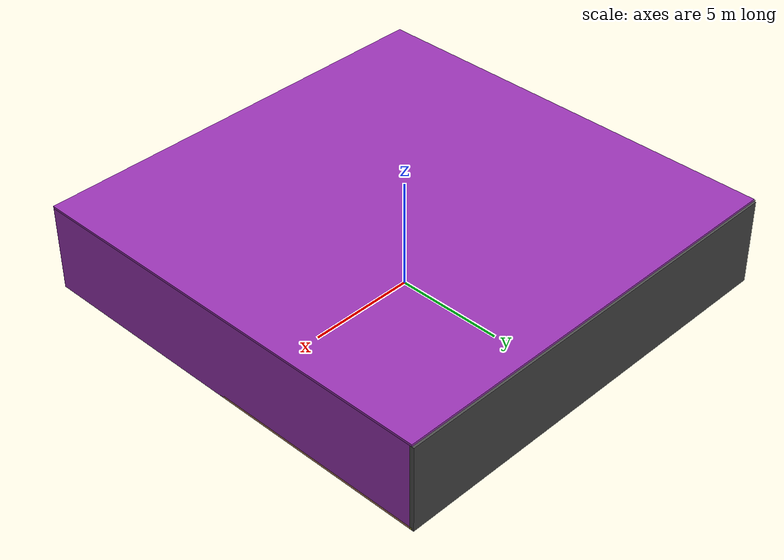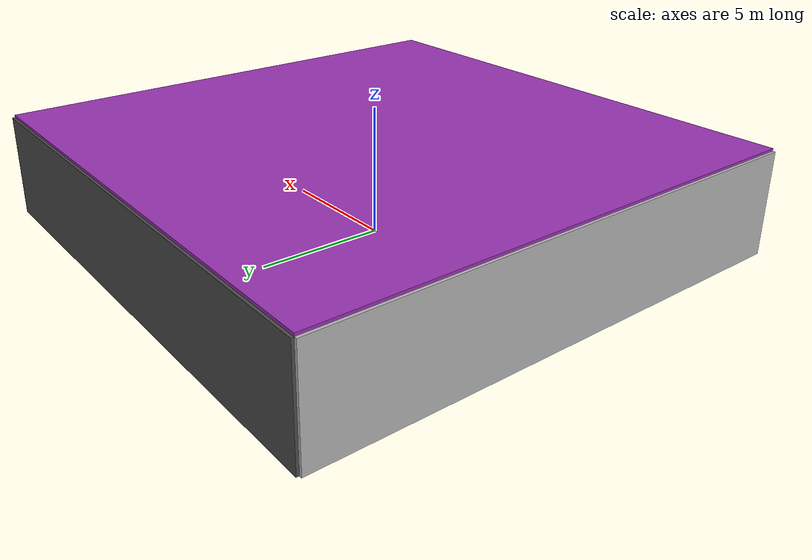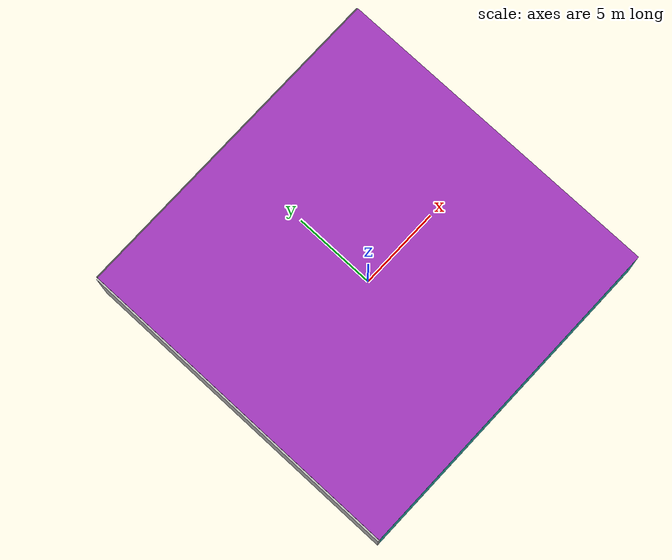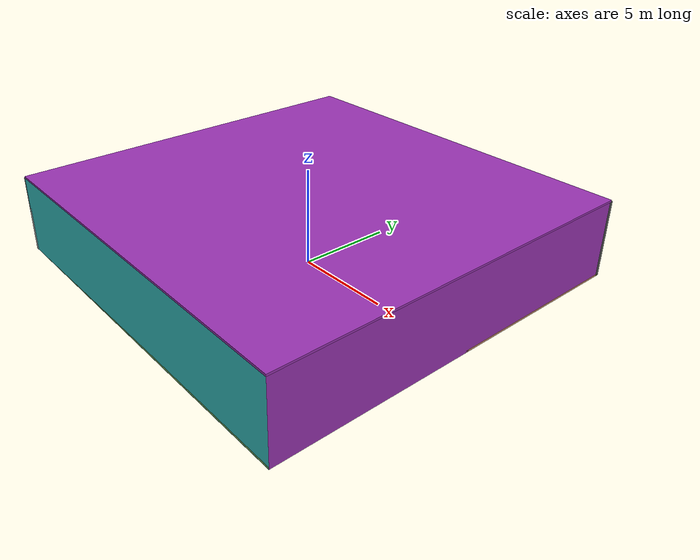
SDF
<sdf version="1.4">
 <world name="default">
  <physics type="ode">
   <max_step_size>0.001</max_step_size>
   <real_time_factor>1</real_time_factor>
   <real_time_update_rate>1000</real_time_update_rate>
   <gravity>0 0 -9.8</gravity>
  </physics>
  <scene><ambient>0.4 0.4 0.4 1</ambient><background>0.7 0.7 0.7 1</background><shadows>1</shadows></scene>
  <model name="Surrounding">
   <static>1</static>
   <link name="Ceiling">
    <collision name="Ceiling_Collision"><geometry><box><size>20 20 0.1</size></box></geometry></collision>
    <visual name="Ceiling_Visual">
     <geometry><box><size>20 20 0.1</size></box></geometry>
     <material>
      <script><uri>file://media/materials/scripts/gazebo.material</uri><name>Gazebo/PurpleGlow</name></script>
     </material>
    </visual>
    <pose>0 0 4.05 0 0 0</pose>
   </link>
   <link name="Wall_South">
    <collision name="Wall_South_Collision">
     <geometry><box><size>20 0 4</size></box></geometry>
     <pose>0 0 2 0 -0 0</pose>
    </collision>
    <visual name="Wall_South_Visual">
     <pose>0 0 2 0 -0 0</pose>
     <geometry><box><size>20 0 4</size></box></geometry>
     <material>
      <script><uri>file://media/materials/scripts/gazebo.material</uri><name>Gazebo/Turquoise</name></script>
     </material>
    </visual>
    <velocity_decay><linear>0</linear><angular>0</angular></velocity_decay>
    <pose>0 -10 0 0 -0 0</pose>
   </link>
   <link name="Wall_East">
    <collision name="Wall_21_Collision">
     <geometry><box><size>20 0 4</size></box></geometry>
     <pose>0 0 2 0 -0 0</pose>
    </collision>
    <visual name="Wall_21_Visual">
     <pose>0 0 2 0 -0 0</pose>
     <geometry><box><size>20 0 4</size></box></geometry>
     <material>
      <script><uri>file://media/materials/scripts/gazebo.material</uri><name>Gazebo/Purple</name></script>
     </material>
    </visual>
    <velocity_decay><linear>0</linear><angular>0</angular></velocity_decay>
    <pose>10 0 0 0 -0 1.5708</pose>
   </link>
   <link name="Wall_North">
    <collision name="Wall_22_Collision">
     <geometry><box><size>20 0.2 4</size></box></geometry>
     <pose>0 0 2 0 -0 0</pose>
    </collision>
    <visual name="Wall_22_Visual">
     <pose>0 0 2 0 -0 0</pose>
     <geometry><box><size>20 0.2 4</size></box></geometry>
     <material>
      <script><uri>file://media/materials/scripts/gazebo.material</uri><name>Gazebo/DarkGrey</name></script>
     </material>
    </visual>
    <velocity_decay><linear>0</linear><angular>0</angular></velocity_decay>
    <pose>0 10 0 0 -0 0</pose>
   </link>
   <link name="Wall_West">
    <collision name="Wall_23_Collision">
     <geometry><box><size>20 0.2 4</size></box></geometry>
     <pose>0 0 2 0 -0 0</pose>
    </collision>
    <visual name="Wall_23_Visual">
     <pose>0 0 2 0 -0 0</pose>
     <geometry><box><size>20 0.2 4</size></box></geometry>
     <material>
      <script><uri>file://media/materials/scripts/gazebo.material</uri><name>Gazebo/Pioneer2Body</name></script>
     </material>
    </visual>
    <velocity_decay><linear>0</linear><angular>0</angular></velocity_decay>
    <pose>-10 0 0 0 0 -1.5708</pose>
   </link>
   <link name="Ground_link">
    <collision name="collision">
     <pose>0 0 .05 0 -0 0</pose>
     <geometry><box><size>20 20 0.1</size></box></geometry>
    </collision>
    <visual name="visual">
     <pose>0 0 .05 0 -0 0</pose>
     <geometry><box><size>20 20 0.1</size></box></geometry>
     <material>
      <script>
       <uri>file://media/materials/scripts/gazebo.material</uri>
       <name>Gazebo/YellowTransparent</name>
      </script>
     </material>
    </visual>
   </link>
   <static>1</static>
  </model>
  <spherical_coordinates>
   <surface_model>EARTH_WGS84</surface_model>
   <latitude_deg>0</latitude_deg>
   <longitude_deg>0</longitude_deg>
   <elevation>0</elevation>
   <heading_deg>0</heading_deg>
  </spherical_coordinates>
  <light name="lightball_0" type="diffuse">
   <diffuse>0.8 0.8 0.8 1</diffuse>
   <specular>0.2 0.2 0.2 1</specular>
   <attenuation>
    <range>100</range>
    <constant>0.7</constant>
    <linear>0.01</linear>
    <quadratic>0.001</quadratic>
   </attenuation>
   <direction>-0.5 0.1 -0.9</direction>
   <pose>1.2567338792 4.77343661649 1.41279249881 0 0 0</pose>
  </light>
  <light name="lightball_1" type="diffuse">
   <diffuse>0.8 0.8 0.8 1</diffuse>
   <specular>0.2 0.2 0.2 1</specular>
   <attenuation>
    <range>100</range>
    <constant>0.7</constant>
    <linear>0.01</linear>
    <quadratic>0.001</quadratic>
   </attenuation>
   <direction>-0.5 0.1 -0.9</direction>
   <pose>-9.21612357613 -6.3962487658 3.86843869126 0 0 0</pose>
  </light>
  <light name="lightball_2" type="diffuse">
   <diffuse>0.8 0.8 0.8 1</diffuse>
   <specular>0.2 0.2 0.2 1</specular>
   <attenuation>
    <range>100</range>
    <constant>0.7</constant>
    <linear>0.01</linear>
    <quadratic>0.001</quadratic>
   </attenuation>
   <direction>-0.5 0.1 -0.9</direction>
   <pose>9.13153278509 -6.38272595505 3.50774853498 0 0 0</pose>
  </light>
  <light name="lightball_3" type="diffuse">
   <diffuse>0.8 0.8 0.8 1</diffuse>
   <specular>0.2 0.2 0.2 1</specular>
   <attenuation>
    <range>100</range>
    <constant>0.7</constant>
    <linear>0.01</linear>
    <quadratic>0.001</quadratic>
   </attenuation>
   <direction>-0.5 0.1 -0.9</direction>
   <pose>-1.09144479418 -1.78222307721 2.24378317693 0 0 0</pose>
  </light>
  <light name="lightball_4" type="diffuse">
   <diffuse>0.8 0.8 0.8 1</diffuse>
   <specular>0.2 0.2 0.2 1</specular>
   <attenuation>
    <range>100</range>
    <constant>0.7</constant>
    <linear>0.01</linear>
    <quadratic>0.001</quadratic>
   </attenuation>
   <direction>-0.5 0.1 -0.9</direction>
   <pose>2.62134832945 2.86423757934 3.76241790919 0 0 0</pose>
  </light>
  <light name="lightball_5" type="diffuse">
   <diffuse>0.8 0.8 0.8 1</diffuse>
   <specular>0.2 0.2 0.2 1</specular>
   <attenuation>
    <range>100</range>
    <constant>0.7</constant>
    <linear>0.01</linear>
    <quadratic>0.001</quadratic>
   </attenuation>
   <direction>-0.5 0.1 -0.9</direction>
   <pose>5.78487147698 -7.30194889766 1.60880181268 0 0 0</pose>
  </light>
  <light name="lightball_6" type="diffuse">
   <diffuse>0.8 0.8 0.8 1</diffuse>
   <specular>0.2 0.2 0.2 1</specular>
   <attenuation>
    <range>100</range>
    <constant>0.7</constant>
    <linear>0.01</linear>
    <quadratic>0.001</quadratic>
   </attenuation>
   <direction>-0.5 0.1 -0.9</direction>
   <pose>-0.465284938505 7.59921360629 3.72068387448 0 0 0</pose>
  </light>
  <light name="lightball_7" type="diffuse">
   <diffuse>0.8 0.8 0.8 1</diffuse>
   <specular>0.2 0.2 0.2 1</specular>
   <attenuation>
    <range>100</range>
    <constant>0.7</constant>
    <linear>0.01</linear>
    <quadratic>0.001</quadratic>
   </attenuation>
   <direction>-0.5 0.1 -0.9</direction>
   <pose>-4.88779168277 -8.84832198048 1.24555824506 0 0 0</pose>
  </light>
  <light name="lightball_8" type="diffuse">
   <diffuse>0.8 0.8 0.8 1</diffuse>
   <specular>0.2 0.2 0.2 1</specular>
   <attenuation>
    <range>100</range>
    <constant>0.7</constant>
    <linear>0.01</linear>
    <quadratic>0.001</quadratic>
   </attenuation>
   <direction>-0.5 0.1 -0.9</direction>
   <pose>5.14565035782 -4.09859440658 2.51478038794 0 0 0</pose>
  </light>
  <light name="lightball_9" type="diffuse">
   <diffuse>0.8 0.8 0.8 1</diffuse>
   <specular>0.2 0.2 0.2 1</specular>
   <attenuation>
    <range>100</range>
    <constant>0.7</constant>
    <linear>0.01</linear>
    <quadratic>0.001</quadratic>
   </attenuation>
   <direction>-0.5 0.1 -0.9</direction>
   <pose>-5.65913394759 4.05588579627 3.5535922965 0 0 0</pose>
  </light>
  <light name="lightball_10" type="diffuse">
   <diffuse>0.8 0.8 0.8 1</diffuse>
   <specular>0.2 0.2 0.2 1</specular>
   <attenuation>
    <range>100</range>
    <constant>0.7</constant>
    <linear>0.01</linear>
    <quadratic>0.001</quadratic>
   </attenuation>
   <direction>-0.5 0.1 -0.9</direction>
   <pose>6.19254485422 -1.23433544945 1.20066249481 0 0 0</pose>
  </light>
  <light name="lightball_11" type="diffuse">
   <diffuse>0.8 0.8 0.8 1</diffuse>
   <specular>0.2 0.2 0.2 1</specular>
   <attenuation>
    <range>100</range>
    <constant>0.7</constant>
    <linear>0.01</linear>
    <quadratic>0.001</quadratic>
   </attenuation>
   <direction>-0.5 0.1 -0.9</direction>
   <pose>-8.4162699781 9.31248526227 1.40969049927 0 0 0</pose>
  </light>
  <include>
   <uri>model://textured_shapes</uri>
   <pose>-4.31848186518 -7.09600292047 0 0 0 3.12082292622</pose>
  </include>
  <include><uri>model://table</uri><pose>-4.18200798301 1.12879821252 0 0 0 0.400942456127</pose></include>
  <include>
   <uri>model://robocup_3Dsim_goal</uri>
   <pose>-4.67813768409 5.19854970727 0 0 0 2.13248486451</pose>
  </include>
  <include>
   <uri>model://robocup_3Dsim_goal</uri>
   <pose>1.02085843808 -4.73873599074 0 0 0 2.85781891392</pose>
  </include>
  <include><uri>model://cabinet</uri><pose>0.817211374564 1.48498821152 0 0 0 1.6096865765</pose></include>
 </world>
</sdf>

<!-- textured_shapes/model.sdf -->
<sdf version="1.6">
  <model name="textured_shapes">
    <pose>0 0 0.5 0 0 0</pose>
    <link name="box">
      <pose>0 -1.5 0 0 0 0</pose>
      <collision name="collision">
        <geometry>
          <box>
            <size>1 1 1</size>
          </box>
        </geometry>
      </collision>
      <visual name="visual">
        <geometry>
          <box>
            <size>1 1 1</size>
          </box>
        </geometry>
        <material>
          <script>
            <uri>model://../model_source/models/textured_shapes/materials/scripts</uri>
            <uri>model://../model_source/models/textured_shapes/materials/textures</uri>
            <name>TexturedShape/Squares</name>
          </script>
        </material>
      </visual>
    </link>
    <link name="sphere">
      <collision name="collision">
        <geometry>
          <sphere>
            <radius>0.5</radius>
          </sphere>
        </geometry>
      </collision>
      <visual name="visual">
        <geometry>
          <sphere>
            <radius>0.5</radius>
          </sphere>
        </geometry>
        <material>
          <script>
            <uri>model://../model_source/models/textured_shapes/materials/scripts</uri>
            <uri>model://../model_source/models/textured_shapes/materials/textures</uri>
            <name>TexturedShape/Squares</name>
          </script>
        </material>
      </visual>
    </link>
    <link name="cylinder">
      <pose>0 1.5 0 0 0 0</pose>
      <collision name="collision">
        <geometry>
          <cylinder>
            <radius>0.5</radius>
            <length>1</length>
          </cylinder>
        </geometry>
      </collision>
      <visual name="visual">
        <geometry>
          <cylinder>
            <radius>0.5</radius>
            <length>1</length>
          </cylinder>
        </geometry>
        <material>
          <script>
            <uri>model://../model_source/models/textured_shapes/materials/scripts</uri>
            <uri>model://../model_source/models/textured_shapes/materials/textures</uri>
            <name>TexturedShape/Squares</name>
          </script>
        </material>
      </visual>
    </link>
  </model>
</sdf>

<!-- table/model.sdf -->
<sdf version="1.5">
  <model name="table">
    <static>true</static>
    <link name="link">
      <collision name="surface">
        <pose>0 0 1.0 0 0 0</pose>
        <geometry>
          <box>
            <size>1.5 0.8 0.03</size>
          </box>
        </geometry>
        <surface>
          <friction>
            <ode>
              <mu>0.6</mu>
              <mu2>0.6</mu2>
            </ode>
          </friction>
        </surface>
      </collision>
      <visual name="visual1">
        <pose>0 0 1.0 0 0 0</pose>
        <geometry>
          <box>
            <size>1.5 0.8 0.03</size>
          </box>
        </geometry>
        <material>
          <script>
            <uri>model://media/materials/scripts/gazebo.material</uri>
            <name>Gazebo/Wood</name>
          </script>
        </material>
      </visual>
      <collision name="front_left_leg">
        <pose>0.68 0.38 0.5 0 0 0</pose>
        <geometry>
          <cylinder>
            <radius>0.02</radius>
            <length>1.0</length>
          </cylinder>
        </geometry>
      </collision>
      <visual name="front_left_leg">
        <pose>0.68 0.38 0.5 0 0 0</pose>
        <geometry>
          <cylinder>
            <radius>0.02</radius>
            <length>1.0</length>
          </cylinder>
        </geometry>
        <material>
          <script>
            <uri>model://media/materials/scripts/gazebo.material</uri>
            <name>Gazebo/Grey</name>
          </script>
        </material>
      </visual>
      <collision name="front_right_leg">
        <pose>0.68 -0.38 0.5 0 0 0</pose>
        <geometry>
          <cylinder>
            <radius>0.02</radius>
            <length>1.0</length>
          </cylinder>
        </geometry>
      </collision>
      <visual name="front_right_leg">
        <pose>0.68 -0.38 0.5 0 0 0</pose>
        <geometry>
          <cylinder>
            <radius>0.02</radius>
            <length>1.0</length>
          </cylinder>
        </geometry>
        <material>
          <script>
            <uri>model://media/materials/scripts/gazebo.material</uri>
            <name>Gazebo/Grey</name>
          </script>
        </material>
      </visual>
      <collision name="back_right_leg">
        <pose>-0.68 -0.38 0.5 0 0 0</pose>
        <geometry>
          <cylinder>
            <radius>0.02</radius>
            <length>1.0</length>
          </cylinder>
        </geometry>
      </collision>
      <visual name="back_right_leg">
        <pose>-0.68 -0.38 0.5 0 0 0</pose>
        <geometry>
          <cylinder>
            <radius>0.02</radius>
            <length>1.0</length>
          </cylinder>
        </geometry>
        <material>
          <script>
            <uri>model://media/materials/scripts/gazebo.material</uri>
            <name>Gazebo/Grey</name>
          </script>
        </material>
      </visual>
      <collision name="back_left_leg">
        <pose>-0.68 0.38 0.5 0 0 0</pose>
        <geometry>
          <cylinder>
            <radius>0.02</radius>
            <length>1.0</length>
          </cylinder>
        </geometry>
      </collision>
      <visual name="back_left_leg">
        <pose>-0.68 0.38 0.5 0 0 0</pose>
        <geometry>
          <cylinder>
            <radius>0.02</radius>
            <length>1.0</length>
          </cylinder>
        </geometry>
        <material>
          <script>
            <uri>model://media/materials/scripts/gazebo.material</uri>
            <name>Gazebo/Grey</name>
          </script>
        </material>
      </visual>
    </link>
  </model>
</sdf>

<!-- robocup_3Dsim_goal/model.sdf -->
<sdf version="1.5">
  <model name="robocup_3d_goal">
    <static>true</static>
    <link name="left_post">
      <pose>0 1.05 0.45 0 0 0</pose>
      <collision name="collision">
        <geometry>
          <cylinder>
            <radius>0.05</radius>
            <length>0.9</length>
          </cylinder>
        </geometry>
      </collision>
      <visual name="visual">
        <geometry>
          <cylinder>
            <radius>0.05</radius>
            <length>0.9</length>
          </cylinder>
        </geometry>
        <material>
          <script>
            <uri>file://media/materials/scripts/gazebo.material</uri>
            <name>Gazebo/ZincYellow</name>
          </script>
        </material>
      </visual>
    </link>
    <link name="left_support_horiz_lower">
      <pose>0.30 1.05 0.01 0 0 0</pose>
      <collision name="collision">
        <geometry>
          <box>
            <size>0.50 0.02 0.02</size>
          </box>
        </geometry>
      </collision>
      <visual name="visual">
        <geometry>
          <box>
            <size>0.50 0.02 0.02</size>
          </box>
        </geometry>
        <material>
          <script>
            <uri>file://media/materials/scripts/gazebo.material</uri>
            <name>Gazebo/White</name>
          </script>
        </material>
      </visual>
    </link>
    <link name="left_support_horiz_upper">
      <pose>0.30 1.05 0.79 0 0 0</pose>
      <collision name="collision">
        <geometry>
          <box>
            <size>0.50 0.02 0.02</size>
          </box>
        </geometry>
      </collision>
      <visual name="visual">
        <geometry>
          <box>
            <size>0.50 0.02 0.02</size>
          </box>
        </geometry>
        <material>
          <script>
            <uri>file://media/materials/scripts/gazebo.material</uri>
            <name>Gazebo/White</name>
          </script>
        </material>
      </visual>
    </link>
    <link name="left_support_vertical">
      <pose>0.56 1.05 0.4 0 1.5708 0</pose>
      <collision name="collision">
        <geometry>
          <box>
            <size>0.80 0.02 0.02</size>
          </box>
        </geometry>
      </collision>
      <visual name="visual">
        <geometry>
          <box>
            <size>0.80 0.02 0.02</size>
          </box>
        </geometry>
        <material>
          <script>
            <uri>file://media/materials/scripts/gazebo.material</uri>
            <name>Gazebo/White</name>
          </script>
        </material>
      </visual>
    </link>
    <link name="right_support_horiz_lower">
      <pose>0.30 -1.05 0.01 0 0 0</pose>
      <collision name="collision">
        <geometry>
          <box>
            <size>0.50 0.02 0.02</size>
          </box>
        </geometry>
      </collision>
      <visual name="visual">
        <geometry>
          <box>
            <size>0.50 0.02 0.02</size>
          </box>
        </geometry>
        <material>
          <script>
            <uri>file://media/materials/scripts/gazebo.material</uri>
            <name>Gazebo/White</name>
          </script>
        </material>
      </visual>
    </link>
    <link name="right_support_horiz_upper">
      <pose>0.30 -1.05 0.79 0 0 0</pose>
      <collision name="collision">
        <geometry>
          <box>
            <size>0.50 0.02 0.02</size>
          </box>
        </geometry>
      </collision>
      <visual name="visual">
        <geometry>
          <box>
            <size>0.50 0.02 0.02</size>
          </box>
        </geometry>
        <material>
          <script>
            <uri>file://media/materials/scripts/gazebo.material</uri>
            <name>Gazebo/White</name>
          </script>
        </material>
      </visual>
    </link>
    <link name="right_support_vertical">
      <pose>0.56 -1.05 0.4 0 1.5708 0</pose>
      <collision name="collision">
        <geometry>
          <box>
            <size>0.80 0.02 0.02</size>
          </box>
        </geometry>
      </collision>
      <visual name="visual">
        <geometry>
          <box>
            <size>0.80 0.02 0.02</size>
          </box>
        </geometry>
        <material>
          <script>
            <uri>file://media/materials/scripts/gazebo.material</uri>
            <name>Gazebo/White</name>
          </script>
        </material>
      </visual>
    </link>
    <link name="center_support_horiz_lower">
      <pose>0.56 0 0.01 0 1.5708 0</pose>
      <collision name="collision">
        <geometry>
          <box>
            <size>0.02 2.08 0.02</size>
          </box>
        </geometry>
      </collision>
      <visual name="visual">
        <geometry>
          <box>
            <size>0.02 2.08 0.02</size>
          </box>
        </geometry>
        <material>
          <script>
            <uri>file://media/materials/scripts/gazebo.material</uri>
            <name>Gazebo/White</name>
          </script>
        </material>
      </visual>
    </link>
    <link name="center_support_horiz_upper">
      <pose>0.56 0 0.79 0 1.5708 0</pose>
      <collision name="collision">
        <geometry>
          <box>
            <size>0.02 2.08 0.02</size>
          </box>
        </geometry>
      </collision>
      <visual name="visual">
        <geometry>
          <box>
            <size>0.02 2.08 0.02</size>
          </box>
        </geometry>
        <material>
          <script>
            <uri>file://media/materials/scripts/gazebo.material</uri>
            <name>Gazebo/White</name>
          </script>
        </material>
      </visual>
    </link>
    <link name="right_post">
      <pose>0 -1.05 0.45 0 0 0</pose>
      <collision name="collision">
        <geometry>
          <cylinder>
            <radius>0.05</radius>
            <length>0.9</length>
          </cylinder>
        </geometry>
      </collision>
      <visual name="visual">
        <geometry>
          <cylinder>
            <radius>0.05</radius>
            <length>0.9</length>
          </cylinder>
        </geometry>
        <material>
          <script>
            <uri>file://media/materials/scripts/gazebo.material</uri>
            <name>Gazebo/ZincYellow</name>
          </script>
        </material>
      </visual>
    </link>
    <link name="crossbar">
      <pose>0 0 0.85 1.57 1.57 0</pose>
      <collision name="collision">
        <geometry>
          <cylinder>
            <radius>0.05</radius>
            <length>2.0</length>
          </cylinder>
        </geometry>
      </collision>
      <visual name="visual">
        <geometry>
          <cylinder>
            <radius>0.05</radius>
            <length>2.0</length>
          </cylinder>
        </geometry>
        <material>
          <script>
            <uri>file://media/materials/scripts/gazebo.material</uri>
            <name>Gazebo/ZincYellow</name>
          </script>
        </material>
      </visual>
    </link>
    <link name="center_net">
      <pose>0.56 0 0.40 0 0 0</pose>
      <collision name="collision">
        <geometry>
          <box>
            <size>0.01 2.1 0.80</size>
          </box>
        </geometry>
      </collision>
      <visual name="visual">
        <geometry>
          <box>
            <size>0.01 2.1 0.80</size>
          </box>
        </geometry>
        <material>
          <script>
            <uri>model://../model_source/models/robocup09_spl_field/materials/scripts/</uri>
            <uri>model://../model_source/models/robocup09_spl_field/materials/textures/</uri>
            <name>RoboCup/Net</name>
          </script>
        </material>
      </visual>
    </link>
    <link name="left_net">
      <pose>0.30 1.05 0.40 0 0 0</pose>
      <collision name="collision">
        <geometry>
          <box>
            <size>0.50 0.01 0.76</size>
          </box>
        </geometry>
      </collision>
      <visual name="visual">
        <geometry>
          <box>
            <size>0.50 0.01 0.76</size>
          </box>
        </geometry>
        <material>
          <script>
            <uri>model://../model_source/models/robocup09_spl_field/materials/scripts/</uri>
            <uri>model://../model_source/models/robocup09_spl_field/materials/textures/</uri>
            <name>RoboCup/Net</name>
          </script>
        </material>
      </visual>
    </link>
    <link name="right_net">
      <pose>0.30 -1.05 0.40 0 0 0</pose>
      <collision name="collision">
        <geometry>
          <box>
            <size>0.50 0.01 0.76</size>
          </box>
        </geometry>
      </collision>
      <visual name="visual">
        <geometry>
          <box>
            <size>0.50 0.01 0.76</size>
          </box>
        </geometry>
        <material>
          <script>
            <uri>model://../model_source/models/robocup09_spl_field/materials/scripts/</uri>
            <uri>model://../model_source/models/robocup09_spl_field/materials/textures/</uri>
            <name>RoboCup/Net</name>
          </script>
        </material>
      </visual>
    </link>
  </model>
</sdf>

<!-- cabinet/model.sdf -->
<sdf version="1.5">
  <model name="cabinet">
    <static>true</static>
    <link name="cabinet_bottom_plate">
      <inertial>
        <pose>0 0 -1 0 0 0</pose>
        <inertia>
          <ixx>2.050000</ixx>
          <ixy>0</ixy>
          <ixz>0</ixz>
          <iyy>2.050000</iyy>
          <iyz>0</iyz>
          <izz>2.050000</izz>
        </inertia>
        <mass>25.000000</mass>
      </inertial>
      <collision name="cabinet_bottom_plate_geom">
        <pose>0 0 0.010000 0 0 0</pose>
        <geometry>
          <box>
            <size>0.450000 0.450000 0.020000</size>
          </box>
        </geometry>
      </collision>
      <visual name="cabinet_bottom_plate_geom_visual">
        <pose>0 0 0.010000 0 0 0</pose>
        <geometry>
          <box>
            <size>0.450000 0.450000 0.020000</size>
          </box>
        </geometry>
        <material>
          <script>
            <uri>model://media/materials/scripts/gazebo.material</uri>
            <name>Gazebo/Wood</name>
          </script>
        </material>
      </visual>
      <collision name="cabinet_bottom_plate_geom_cabinet_back_plate">
        <pose>0.235000 0 0.510000 0 0 0</pose>
        <geometry>
          <box>
            <size>0.020000 0.450000 1.020000</size>
          </box>
        </geometry>
      </collision>
      <visual name="cabinet_bottom_plate_geom_cabinet_back_plate_visual">
        <pose>0.235000 0 0.510000 0 0 0</pose>
        <geometry>
          <box>
            <size>0.020000 0.450000 1.020000</size>
          </box>
        </geometry>
        <material>
          <script>
            <uri>model://media/materials/scripts/gazebo.material</uri>
            <name>Gazebo/Wood</name>
          </script>
        </material>
      </visual>
      <collision name="cabinet_bottom_plate_geom_cabinet_left_plate">
        <pose>0 0.235000 0.510000 0 0 0</pose>
        <geometry>
          <box>
            <size>0.450000 0.020000 1.020000</size>
          </box>
        </geometry>
      </collision>
      <visual name="cabinet_bottom_plate_geom_cabinet_left_plate_visual">
        <pose>0 0.235000 0.510000 0 0 0</pose>
        <geometry>
          <box>
            <size>0.450000 0.020000 1.020000</size>
          </box>
        </geometry>
        <material>
          <script>
            <uri>model://media/materials/scripts/gazebo.material</uri>
            <name>Gazebo/Wood</name>
          </script>
        </material>
      </visual>
      <collision name="cabinet_bottom_plate_geom_cabinet_middle_plate">
        <pose>0 0 0.510000 0 0 0</pose>
        <geometry>
          <box>
            <size>0.450000 0.450000 0.020000</size>
          </box>
        </geometry>
      </collision>
      <visual name="cabinet_bottom_plate_geom_cabinet_middle_plate_visual">
        <pose>0 0 0.510000 0 0 0</pose>
        <geometry>
          <box>
            <size>0.450000 0.450000 0.020000</size>
          </box>
        </geometry>
        <material>
          <script>
            <uri>model://media/materials/scripts/gazebo.material</uri>
            <name>Gazebo/Wood</name>
          </script>
        </material>
      </visual>
      <collision name="cabinet_bottom_plate_geom_cabinet_right_plate">
        <pose>0 -0.235000 0.510000 0 0 0</pose>
        <geometry>
          <box>
            <size>0.450000 0.020000 1.020000</size>
          </box>
        </geometry>
      </collision>
      <visual name="cabinet_bottom_plate_geom_cabinet_right_plate_visual">
        <pose>0 -0.235000 0.510000 0 0 0</pose>
        <geometry>
          <box>
            <size>0.450000 0.020000 1.020000</size>
          </box>
        </geometry>
        <material>
          <script>
            <uri>model://media/materials/scripts/gazebo.material</uri>
            <name>Gazebo/Wood</name>
          </script>
        </material>
      </visual>
      <collision name="cabinet_bottom_plate_geom_cabinet_top_plate">
        <pose>0 0 1.010000 0 0 0</pose>
        <geometry>
          <box>
            <size>0.450000 0.450000 0.020000</size>
          </box>
        </geometry>
      </collision>
      <visual name="cabinet_bottom_plate_geom_cabinet_top_plate_visual">
        <pose>0 0 1.010000 0 0 0</pose>
        <geometry>
          <box>
            <size>0.450000 0.450000 0.020000</size>
          </box>
        </geometry>
        <material>
          <script>
            <uri>model://media/materials/scripts/gazebo.material</uri>
            <name>Gazebo/Wood</name>
          </script>
        </material>
      </visual>
    </link>
  </model>
</sdf>
